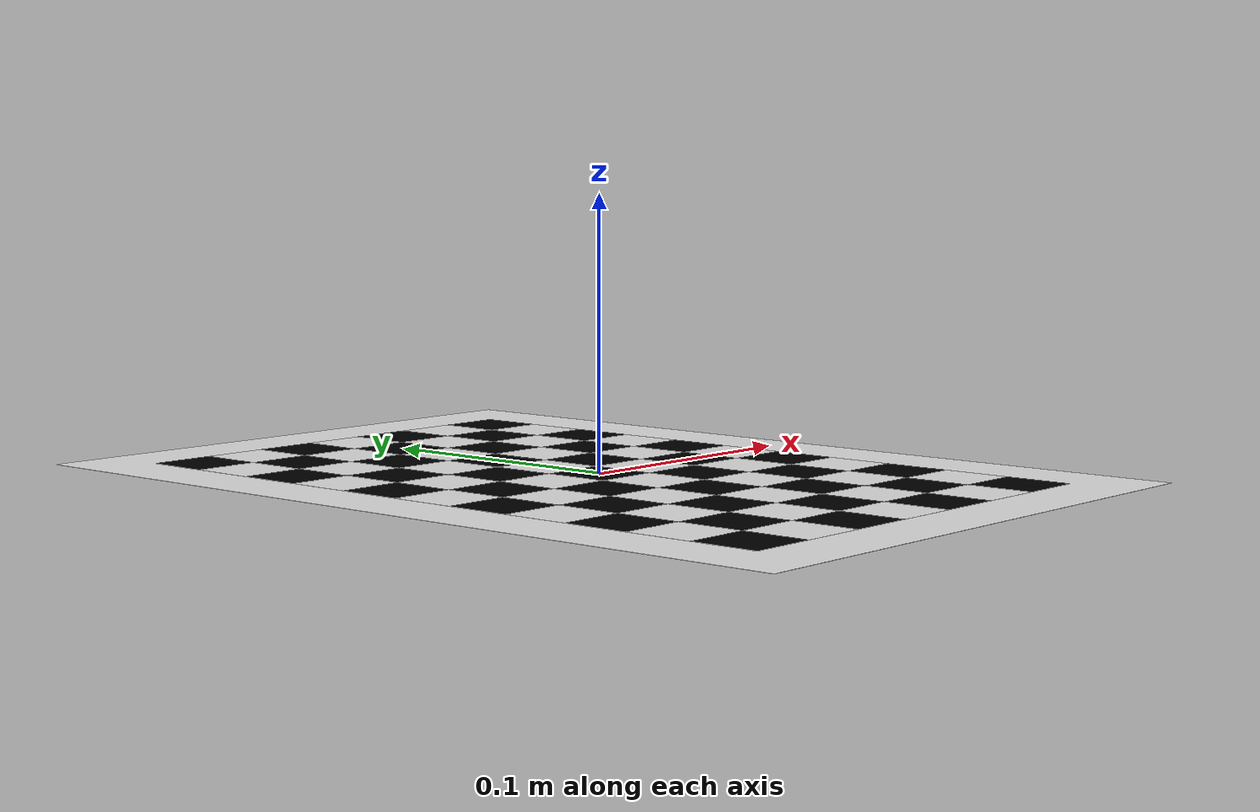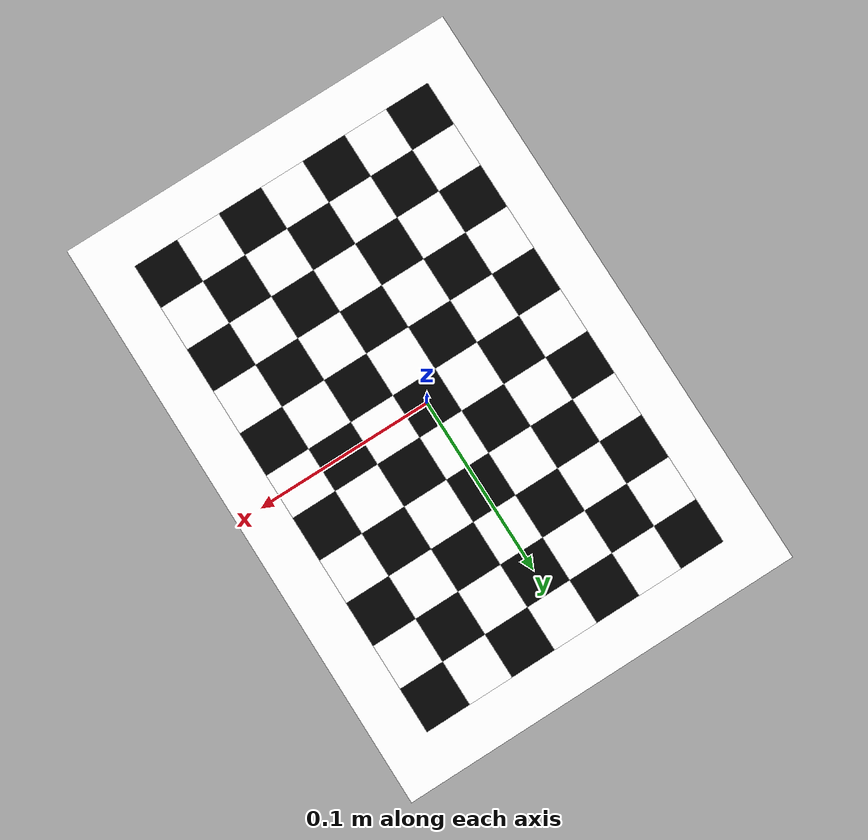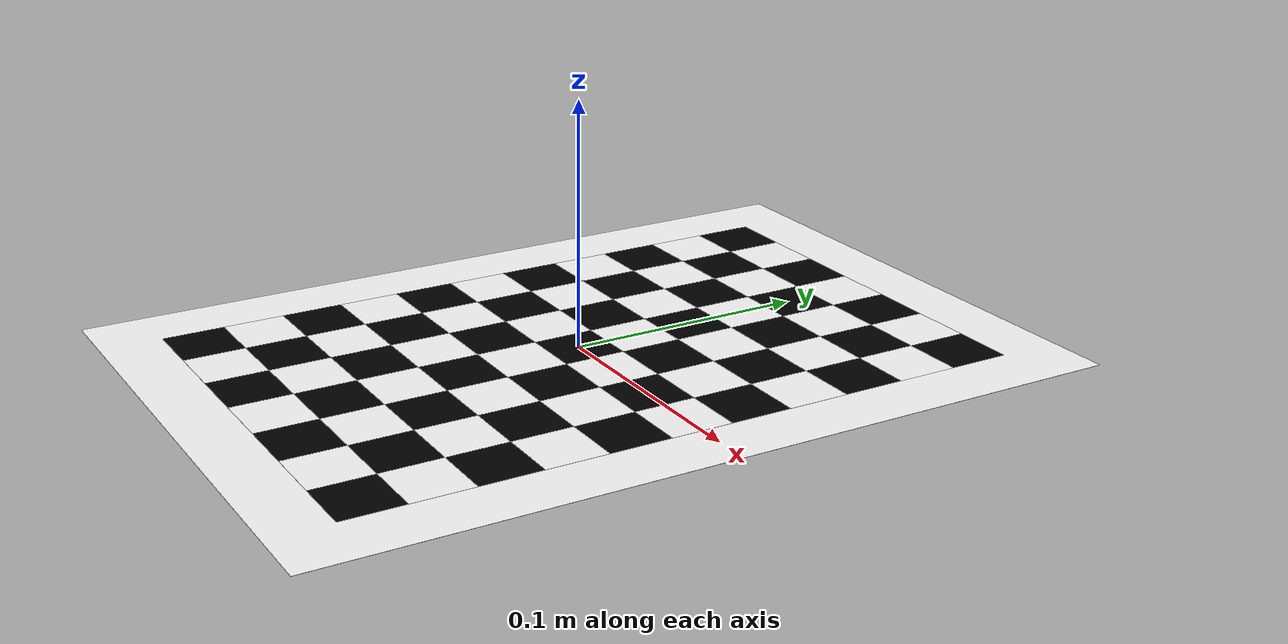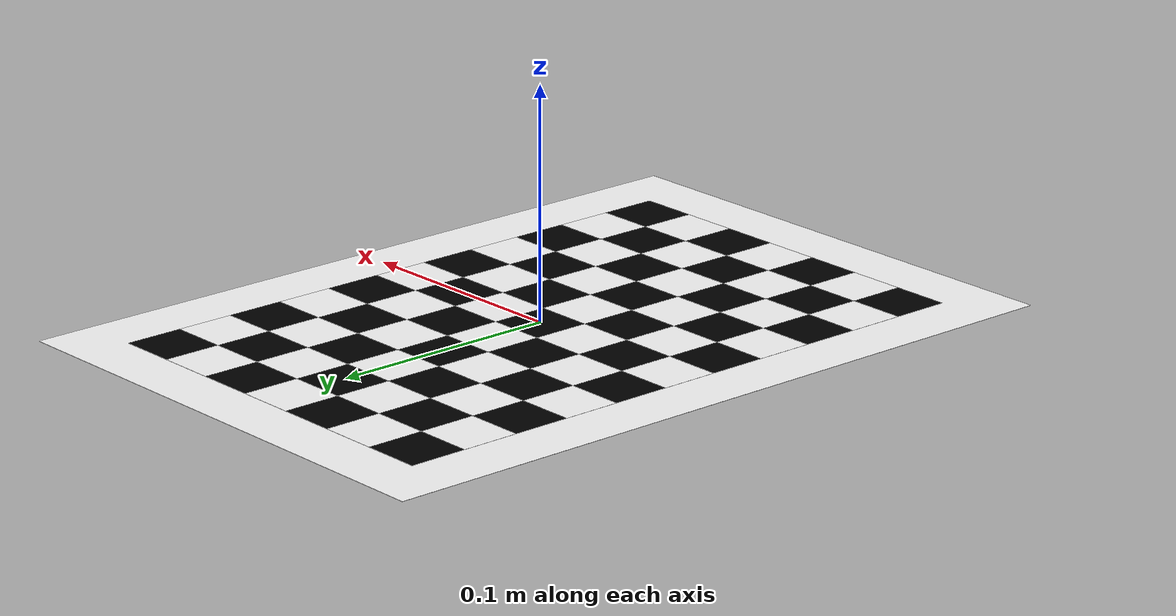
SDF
<?xml version="1.0"?>
<sdf version="1.4">
  <model name="checkerboard_7_11_0_0254">
  <static>true</static>
  <link name="checkerboard_7_11_0_0254_body">
      <visual name="checker_0_0">
        <pose>-0.0762 -0.127 0 0 0 0</pose>
        <geometry>
          <box>
            <size>0.0254 0.0254 0.0002</size>
          </box>
        </geometry>
        <material>
          <ambient>0 0 0 1</ambient>
          <diffuse>0 0 0 1</diffuse>
          <specular>0 0 0 1</specular>
          <emissive>0 0 0 1</emissive>
        </material>
      </visual>
      <visual name="checker_0_1">
        <pose>-0.0762 -0.1016 0 0 0 0</pose>
        <geometry>
          <box>
            <size>0.0254 0.0254 0.0002</size>
          </box>
        </geometry>
        <material>
          <ambient>1 1 1 1</ambient>
          <diffuse>1 1 1 1</diffuse>
          <specular>1 1 1 1</specular>
          <emissive>1 1 1 1</emissive>
        </material>
      </visual>
      <visual name="checker_0_2">
        <pose>-0.0762 -0.0762 0 0 0 0</pose>
        <geometry>
          <box>
            <size>0.0254 0.0254 0.0002</size>
          </box>
        </geometry>
        <material>
          <ambient>0 0 0 1</ambient>
          <diffuse>0 0 0 1</diffuse>
          <specular>0 0 0 1</specular>
          <emissive>0 0 0 1</emissive>
        </material>
      </visual>
      <visual name="checker_0_3">
        <pose>-0.0762 -0.0508 0 0 0 0</pose>
        <geometry>
          <box>
            <size>0.0254 0.0254 0.0002</size>
          </box>
        </geometry>
        <material>
          <ambient>1 1 1 1</ambient>
          <diffuse>1 1 1 1</diffuse>
          <specular>1 1 1 1</specular>
          <emissive>1 1 1 1</emissive>
        </material>
      </visual>
      <visual name="checker_0_4">
        <pose>-0.0762 -0.0254 0 0 0 0</pose>
        <geometry>
          <box>
            <size>0.0254 0.0254 0.0002</size>
          </box>
        </geometry>
        <material>
          <ambient>0 0 0 1</ambient>
          <diffuse>0 0 0 1</diffuse>
          <specular>0 0 0 1</specular>
          <emissive>0 0 0 1</emissive>
        </material>
      </visual>
      <visual name="checker_0_5">
        <pose>-0.0762 0.0 0 0 0 0</pose>
        <geometry>
          <box>
            <size>0.0254 0.0254 0.0002</size>
          </box>
        </geometry>
        <material>
          <ambient>1 1 1 1</ambient>
          <diffuse>1 1 1 1</diffuse>
          <specular>1 1 1 1</specular>
          <emissive>1 1 1 1</emissive>
        </material>
      </visual>
      <visual name="checker_0_6">
        <pose>-0.0762 0.0254 0 0 0 0</pose>
        <geometry>
          <box>
            <size>0.0254 0.0254 0.0002</size>
          </box>
        </geometry>
        <material>
          <ambient>0 0 0 1</ambient>
          <diffuse>0 0 0 1</diffuse>
          <specular>0 0 0 1</specular>
          <emissive>0 0 0 1</emissive>
        </material>
      </visual>
      <visual name="checker_0_7">
        <pose>-0.0762 0.0508 0 0 0 0</pose>
        <geometry>
          <box>
            <size>0.0254 0.0254 0.0002</size>
          </box>
        </geometry>
        <material>
          <ambient>1 1 1 1</ambient>
          <diffuse>1 1 1 1</diffuse>
          <specular>1 1 1 1</specular>
          <emissive>1 1 1 1</emissive>
        </material>
      </visual>
      <visual name="checker_0_8">
        <pose>-0.0762 0.0762 0 0 0 0</pose>
        <geometry>
          <box>
            <size>0.0254 0.0254 0.0002</size>
          </box>
        </geometry>
        <material>
          <ambient>0 0 0 1</ambient>
          <diffuse>0 0 0 1</diffuse>
          <specular>0 0 0 1</specular>
          <emissive>0 0 0 1</emissive>
        </material>
      </visual>
      <visual name="checker_0_9">
        <pose>-0.0762 0.1016 0 0 0 0</pose>
        <geometry>
          <box>
            <size>0.0254 0.0254 0.0002</size>
          </box>
        </geometry>
        <material>
          <ambient>1 1 1 1</ambient>
          <diffuse>1 1 1 1</diffuse>
          <specular>1 1 1 1</specular>
          <emissive>1 1 1 1</emissive>
        </material>
      </visual>
      <visual name="checker_0_10">
        <pose>-0.0762 0.127 0 0 0 0</pose>
        <geometry>
          <box>
            <size>0.0254 0.0254 0.0002</size>
          </box>
        </geometry>
        <material>
          <ambient>0 0 0 1</ambient>
          <diffuse>0 0 0 1</diffuse>
          <specular>0 0 0 1</specular>
          <emissive>0 0 0 1</emissive>
        </material>
      </visual>
      <visual name="checker_1_0">
        <pose>-0.0508 -0.127 0 0 0 0</pose>
        <geometry>
          <box>
            <size>0.0254 0.0254 0.0002</size>
          </box>
        </geometry>
        <material>
          <ambient>1 1 1 1</ambient>
          <diffuse>1 1 1 1</diffuse>
          <specular>1 1 1 1</specular>
          <emissive>1 1 1 1</emissive>
        </material>
      </visual>
      <visual name="checker_1_1">
        <pose>-0.0508 -0.1016 0 0 0 0</pose>
        <geometry>
          <box>
            <size>0.0254 0.0254 0.0002</size>
          </box>
        </geometry>
        <material>
          <ambient>0 0 0 1</ambient>
          <diffuse>0 0 0 1</diffuse>
          <specular>0 0 0 1</specular>
          <emissive>0 0 0 1</emissive>
        </material>
      </visual>
      <visual name="checker_1_2">
        <pose>-0.0508 -0.0762 0 0 0 0</pose>
        <geometry>
          <box>
            <size>0.0254 0.0254 0.0002</size>
          </box>
        </geometry>
        <material>
          <ambient>1 1 1 1</ambient>
          <diffuse>1 1 1 1</diffuse>
          <specular>1 1 1 1</specular>
          <emissive>1 1 1 1</emissive>
        </material>
      </visual>
      <visual name="checker_1_3">
        <pose>-0.0508 -0.0508 0 0 0 0</pose>
        <geometry>
          <box>
            <size>0.0254 0.0254 0.0002</size>
          </box>
        </geometry>
        <material>
          <ambient>0 0 0 1</ambient>
          <diffuse>0 0 0 1</diffuse>
          <specular>0 0 0 1</specular>
          <emissive>0 0 0 1</emissive>
        </material>
      </visual>
      <visual name="checker_1_4">
        <pose>-0.0508 -0.0254 0 0 0 0</pose>
        <geometry>
          <box>
            <size>0.0254 0.0254 0.0002</size>
          </box>
        </geometry>
        <material>
          <ambient>1 1 1 1</ambient>
          <diffuse>1 1 1 1</diffuse>
          <specular>1 1 1 1</specular>
          <emissive>1 1 1 1</emissive>
        </material>
      </visual>
      <visual name="checker_1_5">
        <pose>-0.0508 0.0 0 0 0 0</pose>
        <geometry>
          <box>
            <size>0.0254 0.0254 0.0002</size>
          </box>
        </geometry>
        <material>
          <ambient>0 0 0 1</ambient>
          <diffuse>0 0 0 1</diffuse>
          <specular>0 0 0 1</specular>
          <emissive>0 0 0 1</emissive>
        </material>
      </visual>
      <visual name="checker_1_6">
        <pose>-0.0508 0.0254 0 0 0 0</pose>
        <geometry>
          <box>
            <size>0.0254 0.0254 0.0002</size>
          </box>
        </geometry>
        <material>
          <ambient>1 1 1 1</ambient>
          <diffuse>1 1 1 1</diffuse>
          <specular>1 1 1 1</specular>
          <emissive>1 1 1 1</emissive>
        </material>
      </visual>
      <visual name="checker_1_7">
        <pose>-0.0508 0.0508 0 0 0 0</pose>
        <geometry>
          <box>
            <size>0.0254 0.0254 0.0002</size>
          </box>
        </geometry>
        <material>
          <ambient>0 0 0 1</ambient>
          <diffuse>0 0 0 1</diffuse>
          <specular>0 0 0 1</specular>
          <emissive>0 0 0 1</emissive>
        </material>
      </visual>
      <visual name="checker_1_8">
        <pose>-0.0508 0.0762 0 0 0 0</pose>
        <geometry>
          <box>
            <size>0.0254 0.0254 0.0002</size>
          </box>
        </geometry>
        <material>
          <ambient>1 1 1 1</ambient>
          <diffuse>1 1 1 1</diffuse>
          <specular>1 1 1 1</specular>
          <emissive>1 1 1 1</emissive>
        </material>
      </visual>
      <visual name="checker_1_9">
        <pose>-0.0508 0.1016 0 0 0 0</pose>
        <geometry>
          <box>
            <size>0.0254 0.0254 0.0002</size>
          </box>
        </geometry>
        <material>
          <ambient>0 0 0 1</ambient>
          <diffuse>0 0 0 1</diffuse>
          <specular>0 0 0 1</specular>
          <emissive>0 0 0 1</emissive>
        </material>
      </visual>
      <visual name="checker_1_10">
        <pose>-0.0508 0.127 0 0 0 0</pose>
        <geometry>
          <box>
            <size>0.0254 0.0254 0.0002</size>
          </box>
        </geometry>
        <material>
          <ambient>1 1 1 1</ambient>
          <diffuse>1 1 1 1</diffuse>
          <specular>1 1 1 1</specular>
          <emissive>1 1 1 1</emissive>
        </material>
      </visual>
      <visual name="checker_2_0">
        <pose>-0.0254 -0.127 0 0 0 0</pose>
        <geometry>
          <box>
            <size>0.0254 0.0254 0.0002</size>
          </box>
        </geometry>
        <material>
          <ambient>0 0 0 1</ambient>
          <diffuse>0 0 0 1</diffuse>
          <specular>0 0 0 1</specular>
          <emissive>0 0 0 1</emissive>
        </material>
      </visual>
      <visual name="checker_2_1">
        <pose>-0.0254 -0.1016 0 0 0 0</pose>
        <geometry>
          <box>
            <size>0.0254 0.0254 0.0002</size>
          </box>
        </geometry>
        <material>
          <ambient>1 1 1 1</ambient>
          <diffuse>1 1 1 1</diffuse>
          <specular>1 1 1 1</specular>
          <emissive>1 1 1 1</emissive>
        </material>
      </visual>
      <visual name="checker_2_2">
        <pose>-0.0254 -0.0762 0 0 0 0</pose>
        <geometry>
          <box>
            <size>0.0254 0.0254 0.0002</size>
          </box>
        </geometry>
        <material>
          <ambient>0 0 0 1</ambient>
          <diffuse>0 0 0 1</diffuse>
          <specular>0 0 0 1</specular>
          <emissive>0 0 0 1</emissive>
        </material>
      </visual>
      <visual name="checker_2_3">
        <pose>-0.0254 -0.0508 0 0 0 0</pose>
        <geometry>
          <box>
            <size>0.0254 0.0254 0.0002</size>
          </box>
        </geometry>
        <material>
          <ambient>1 1 1 1</ambient>
          <diffuse>1 1 1 1</diffuse>
          <specular>1 1 1 1</specular>
          <emissive>1 1 1 1</emissive>
        </material>
      </visual>
      <visual name="checker_2_4">
        <pose>-0.0254 -0.0254 0 0 0 0</pose>
        <geometry>
          <box>
            <size>0.0254 0.0254 0.0002</size>
          </box>
        </geometry>
        <material>
          <ambient>0 0 0 1</ambient>
          <diffuse>0 0 0 1</diffuse>
          <specular>0 0 0 1</specular>
          <emissive>0 0 0 1</emissive>
        </material>
      </visual>
      <visual name="checker_2_5">
        <pose>-0.0254 0.0 0 0 0 0</pose>
        <geometry>
          <box>
            <size>0.0254 0.0254 0.0002</size>
          </box>
        </geometry>
        <material>
          <ambient>1 1 1 1</ambient>
          <diffuse>1 1 1 1</diffuse>
          <specular>1 1 1 1</specular>
          <emissive>1 1 1 1</emissive>
        </material>
      </visual>
      <visual name="checker_2_6">
        <pose>-0.0254 0.0254 0 0 0 0</pose>
        <geometry>
          <box>
            <size>0.0254 0.0254 0.0002</size>
          </box>
        </geometry>
        <material>
          <ambient>0 0 0 1</ambient>
          <diffuse>0 0 0 1</diffuse>
          <specular>0 0 0 1</specular>
          <emissive>0 0 0 1</emissive>
        </material>
      </visual>
      <visual name="checker_2_7">
        <pose>-0.0254 0.0508 0 0 0 0</pose>
        <geometry>
          <box>
            <size>0.0254 0.0254 0.0002</size>
          </box>
        </geometry>
        <material>
          <ambient>1 1 1 1</ambient>
          <diffuse>1 1 1 1</diffuse>
          <specular>1 1 1 1</specular>
          <emissive>1 1 1 1</emissive>
        </material>
      </visual>
      <visual name="checker_2_8">
        <pose>-0.0254 0.0762 0 0 0 0</pose>
        <geometry>
          <box>
            <size>0.0254 0.0254 0.0002</size>
          </box>
        </geometry>
        <material>
          <ambient>0 0 0 1</ambient>
          <diffuse>0 0 0 1</diffuse>
          <specular>0 0 0 1</specular>
          <emissive>0 0 0 1</emissive>
        </material>
      </visual>
      <visual name="checker_2_9">
        <pose>-0.0254 0.1016 0 0 0 0</pose>
        <geometry>
          <box>
            <size>0.0254 0.0254 0.0002</size>
          </box>
        </geometry>
        <material>
          <ambient>1 1 1 1</ambient>
          <diffuse>1 1 1 1</diffuse>
          <specular>1 1 1 1</specular>
          <emissive>1 1 1 1</emissive>
        </material>
      </visual>
      <visual name="checker_2_10">
        <pose>-0.0254 0.127 0 0 0 0</pose>
        <geometry>
          <box>
            <size>0.0254 0.0254 0.0002</size>
          </box>
        </geometry>
        <material>
          <ambient>0 0 0 1</ambient>
          <diffuse>0 0 0 1</diffuse>
          <specular>0 0 0 1</specular>
          <emissive>0 0 0 1</emissive>
        </material>
      </visual>
      <visual name="checker_3_0">
        <pose>0.0 -0.127 0 0 0 0</pose>
        <geometry>
          <box>
            <size>0.0254 0.0254 0.0002</size>
          </box>
        </geometry>
        <material>
          <ambient>1 1 1 1</ambient>
          <diffuse>1 1 1 1</diffuse>
          <specular>1 1 1 1</specular>
          <emissive>1 1 1 1</emissive>
        </material>
      </visual>
      <visual name="checker_3_1">
        <pose>0.0 -0.1016 0 0 0 0</pose>
        <geometry>
          <box>
            <size>0.0254 0.0254 0.0002</size>
          </box>
        </geometry>
        <material>
          <ambient>0 0 0 1</ambient>
          <diffuse>0 0 0 1</diffuse>
          <specular>0 0 0 1</specular>
          <emissive>0 0 0 1</emissive>
        </material>
      </visual>
      <visual name="checker_3_2">
        <pose>0.0 -0.0762 0 0 0 0</pose>
        <geometry>
          <box>
            <size>0.0254 0.0254 0.0002</size>
          </box>
        </geometry>
        <material>
          <ambient>1 1 1 1</ambient>
          <diffuse>1 1 1 1</diffuse>
          <specular>1 1 1 1</specular>
          <emissive>1 1 1 1</emissive>
        </material>
      </visual>
      <visual name="checker_3_3">
        <pose>0.0 -0.0508 0 0 0 0</pose>
        <geometry>
          <box>
            <size>0.0254 0.0254 0.0002</size>
          </box>
        </geometry>
        <material>
          <ambient>0 0 0 1</ambient>
          <diffuse>0 0 0 1</diffuse>
          <specular>0 0 0 1</specular>
          <emissive>0 0 0 1</emissive>
        </material>
      </visual>
      <visual name="checker_3_4">
        <pose>0.0 -0.0254 0 0 0 0</pose>
        <geometry>
          <box>
            <size>0.0254 0.0254 0.0002</size>
          </box>
        </geometry>
        <material>
          <ambient>1 1 1 1</ambient>
          <diffuse>1 1 1 1</diffuse>
          <specular>1 1 1 1</specular>
          <emissive>1 1 1 1</emissive>
        </material>
      </visual>
      <visual name="checker_3_5">
        <pose>0.0 0.0 0 0 0 0</pose>
        <geometry>
          <box>
            <size>0.0254 0.0254 0.0002</size>
          </box>
        </geometry>
        <material>
          <ambient>0 0 0 1</ambient>
          <diffuse>0 0 0 1</diffuse>
          <specular>0 0 0 1</specular>
          <emissive>0 0 0 1</emissive>
        </material>
      </visual>
      <visual name="checker_3_6">
        <pose>0.0 0.0254 0 0 0 0</pose>
        <geometry>
          <box>
            <size>0.0254 0.0254 0.0002</size>
          </box>
        </geometry>
        <material>
          <ambient>1 1 1 1</ambient>
          <diffuse>1 1 1 1</diffuse>
          <specular>1 1 1 1</specular>
          <emissive>1 1 1 1</emissive>
        </material>
      </visual>
      <visual name="checker_3_7">
        <pose>0.0 0.0508 0 0 0 0</pose>
        <geometry>
          <box>
            <size>0.0254 0.0254 0.0002</size>
          </box>
        </geometry>
        <material>
          <ambient>0 0 0 1</ambient>
          <diffuse>0 0 0 1</diffuse>
          <specular>0 0 0 1</specular>
          <emissive>0 0 0 1</emissive>
        </material>
      </visual>
      <visual name="checker_3_8">
        <pose>0.0 0.0762 0 0 0 0</pose>
        <geometry>
          <box>
            <size>0.0254 0.0254 0.0002</size>
          </box>
        </geometry>
        <material>
          <ambient>1 1 1 1</ambient>
          <diffuse>1 1 1 1</diffuse>
          <specular>1 1 1 1</specular>
          <emissive>1 1 1 1</emissive>
        </material>
      </visual>
      <visual name="checker_3_9">
        <pose>0.0 0.1016 0 0 0 0</pose>
        <geometry>
          <box>
            <size>0.0254 0.0254 0.0002</size>
          </box>
        </geometry>
        <material>
          <ambient>0 0 0 1</ambient>
          <diffuse>0 0 0 1</diffuse>
          <specular>0 0 0 1</specular>
          <emissive>0 0 0 1</emissive>
        </material>
      </visual>
      <visual name="checker_3_10">
        <pose>0.0 0.127 0 0 0 0</pose>
        <geometry>
          <box>
            <size>0.0254 0.0254 0.0002</size>
          </box>
        </geometry>
        <material>
          <ambient>1 1 1 1</ambient>
          <diffuse>1 1 1 1</diffuse>
          <specular>1 1 1 1</specular>
          <emissive>1 1 1 1</emissive>
        </material>
      </visual>
      <visual name="checker_4_0">
        <pose>0.0254 -0.127 0 0 0 0</pose>
        <geometry>
          <box>
            <size>0.0254 0.0254 0.0002</size>
          </box>
        </geometry>
        <material>
          <ambient>0 0 0 1</ambient>
          <diffuse>0 0 0 1</diffuse>
          <specular>0 0 0 1</specular>
          <emissive>0 0 0 1</emissive>
        </material>
      </visual>
      <visual name="checker_4_1">
        <pose>0.0254 -0.1016 0 0 0 0</pose>
        <geometry>
          <box>
            <size>0.0254 0.0254 0.0002</size>
          </box>
        </geometry>
        <material>
          <ambient>1 1 1 1</ambient>
          <diffuse>1 1 1 1</diffuse>
          <specular>1 1 1 1</specular>
          <emissive>1 1 1 1</emissive>
        </material>
      </visual>
      <visual name="checker_4_2">
        <pose>0.0254 -0.0762 0 0 0 0</pose>
        <geometry>
          <box>
            <size>0.0254 0.0254 0.0002</size>
          </box>
        </geometry>
        <material>
          <ambient>0 0 0 1</ambient>
          <diffuse>0 0 0 1</diffuse>
          <specular>0 0 0 1</specular>
          <emissive>0 0 0 1</emissive>
        </material>
      </visual>
      <visual name="checker_4_3">
        <pose>0.0254 -0.0508 0 0 0 0</pose>
        <geometry>
          <box>
            <size>0.0254 0.0254 0.0002</size>
          </box>
        </geometry>
        <material>
          <ambient>1 1 1 1</ambient>
          <diffuse>1 1 1 1</diffuse>
          <specular>1 1 1 1</specular>
          <emissive>1 1 1 1</emissive>
        </material>
      </visual>
      <visual name="checker_4_4">
        <pose>0.0254 -0.0254 0 0 0 0</pose>
        <geometry>
          <box>
            <size>0.0254 0.0254 0.0002</size>
          </box>
        </geometry>
        <material>
          <ambient>0 0 0 1</ambient>
          <diffuse>0 0 0 1</diffuse>
          <specular>0 0 0 1</specular>
          <emissive>0 0 0 1</emissive>
        </material>
      </visual>
      <visual name="checker_4_5">
        <pose>0.0254 0.0 0 0 0 0</pose>
        <geometry>
          <box>
            <size>0.0254 0.0254 0.0002</size>
          </box>
        </geometry>
        <material>
          <ambient>1 1 1 1</ambient>
          <diffuse>1 1 1 1</diffuse>
          <specular>1 1 1 1</specular>
          <emissive>1 1 1 1</emissive>
        </material>
      </visual>
      <visual name="checker_4_6">
        <pose>0.0254 0.0254 0 0 0 0</pose>
        <geometry>
          <box>
            <size>0.0254 0.0254 0.0002</size>
          </box>
        </geometry>
        <material>
          <ambient>0 0 0 1</ambient>
          <diffuse>0 0 0 1</diffuse>
          <specular>0 0 0 1</specular>
          <emissive>0 0 0 1</emissive>
        </material>
      </visual>
      <visual name="checker_4_7">
        <pose>0.0254 0.0508 0 0 0 0</pose>
        <geometry>
          <box>
            <size>0.0254 0.0254 0.0002</size>
          </box>
        </geometry>
        <material>
          <ambient>1 1 1 1</ambient>
          <diffuse>1 1 1 1</diffuse>
          <specular>1 1 1 1</specular>
          <emissive>1 1 1 1</emissive>
        </material>
      </visual>
      <visual name="checker_4_8">
        <pose>0.0254 0.0762 0 0 0 0</pose>
        <geometry>
          <box>
            <size>0.0254 0.0254 0.0002</size>
          </box>
        </geometry>
        <material>
          <ambient>0 0 0 1</ambient>
          <diffuse>0 0 0 1</diffuse>
          <specular>0 0 0 1</specular>
          <emissive>0 0 0 1</emissive>
        </material>
      </visual>
      <visual name="checker_4_9">
        <pose>0.0254 0.1016 0 0 0 0</pose>
        <geometry>
          <box>
            <size>0.0254 0.0254 0.0002</size>
          </box>
        </geometry>
        <material>
          <ambient>1 1 1 1</ambient>
          <diffuse>1 1 1 1</diffuse>
          <specular>1 1 1 1</specular>
          <emissive>1 1 1 1</emissive>
        </material>
      </visual>
      <visual name="checker_4_10">
        <pose>0.0254 0.127 0 0 0 0</pose>
        <geometry>
          <box>
            <size>0.0254 0.0254 0.0002</size>
          </box>
        </geometry>
        <material>
          <ambient>0 0 0 1</ambient>
          <diffuse>0 0 0 1</diffuse>
          <specular>0 0 0 1</specular>
          <emissive>0 0 0 1</emissive>
        </material>
      </visual>
      <visual name="checker_5_0">
        <pose>0.0508 -0.127 0 0 0 0</pose>
        <geometry>
          <box>
            <size>0.0254 0.0254 0.0002</size>
          </box>
        </geometry>
        <material>
          <ambient>1 1 1 1</ambient>
          <diffuse>1 1 1 1</diffuse>
          <specular>1 1 1 1</specular>
          <emissive>1 1 1 1</emissive>
        </material>
      </visual>
      <visual name="checker_5_1">
        <pose>0.0508 -0.1016 0 0 0 0</pose>
        <geometry>
          <box>
            <size>0.0254 0.0254 0.0002</size>
          </box>
        </geometry>
        <material>
          <ambient>0 0 0 1</ambient>
          <diffuse>0 0 0 1</diffuse>
          <specular>0 0 0 1</specular>
          <emissive>0 0 0 1</emissive>
        </material>
      </visual>
      <visual name="checker_5_2">
        <pose>0.0508 -0.0762 0 0 0 0</pose>
        <geometry>
          <box>
            <size>0.0254 0.0254 0.0002</size>
          </box>
        </geometry>
        <material>
          <ambient>1 1 1 1</ambient>
          <diffuse>1 1 1 1</diffuse>
          <specular>1 1 1 1</specular>
          <emissive>1 1 1 1</emissive>
        </material>
      </visual>
      <visual name="checker_5_3">
        <pose>0.0508 -0.0508 0 0 0 0</pose>
        <geometry>
          <box>
            <size>0.0254 0.0254 0.0002</size>
          </box>
        </geometry>
        <material>
          <ambient>0 0 0 1</ambient>
          <diffuse>0 0 0 1</diffuse>
          <specular>0 0 0 1</specular>
          <emissive>0 0 0 1</emissive>
        </material>
      </visual>
      <visual name="checker_5_4">
        <pose>0.0508 -0.0254 0 0 0 0</pose>
        <geometry>
          <box>
            <size>0.0254 0.0254 0.0002</size>
          </box>
        </geometry>
        <material>
          <ambient>1 1 1 1</ambient>
          <diffuse>1 1 1 1</diffuse>
          <specular>1 1 1 1</specular>
          <emissive>1 1 1 1</emissive>
        </material>
      </visual>
      <visual name="checker_5_5">
        <pose>0.0508 0.0 0 0 0 0</pose>
        <geometry>
          <box>
            <size>0.0254 0.0254 0.0002</size>
          </box>
        </geometry>
        <material>
          <ambient>0 0 0 1</ambient>
          <diffuse>0 0 0 1</diffuse>
          <specular>0 0 0 1</specular>
          <emissive>0 0 0 1</emissive>
        </material>
      </visual>
      <visual name="checker_5_6">
        <pose>0.0508 0.0254 0 0 0 0</pose>
        <geometry>
          <box>
            <size>0.0254 0.0254 0.0002</size>
          </box>
        </geometry>
        <material>
          <ambient>1 1 1 1</ambient>
          <diffuse>1 1 1 1</diffuse>
          <specular>1 1 1 1</specular>
          <emissive>1 1 1 1</emissive>
        </material>
      </visual>
      <visual name="checker_5_7">
        <pose>0.0508 0.0508 0 0 0 0</pose>
        <geometry>
          <box>
            <size>0.0254 0.0254 0.0002</size>
          </box>
        </geometry>
        <material>
          <ambient>0 0 0 1</ambient>
          <diffuse>0 0 0 1</diffuse>
          <specular>0 0 0 1</specular>
          <emissive>0 0 0 1</emissive>
        </material>
      </visual>
      <visual name="checker_5_8">
        <pose>0.0508 0.0762 0 0 0 0</pose>
        <geometry>
          <box>
            <size>0.0254 0.0254 0.0002</size>
          </box>
        </geometry>
        <material>
          <ambient>1 1 1 1</ambient>
          <diffuse>1 1 1 1</diffuse>
          <specular>1 1 1 1</specular>
          <emissive>1 1 1 1</emissive>
        </material>
      </visual>
      <visual name="checker_5_9">
        <pose>0.0508 0.1016 0 0 0 0</pose>
        <geometry>
          <box>
            <size>0.0254 0.0254 0.0002</size>
          </box>
        </geometry>
        <material>
          <ambient>0 0 0 1</ambient>
          <diffuse>0 0 0 1</diffuse>
          <specular>0 0 0 1</specular>
          <emissive>0 0 0 1</emissive>
        </material>
      </visual>
      <visual name="checker_5_10">
        <pose>0.0508 0.127 0 0 0 0</pose>
        <geometry>
          <box>
            <size>0.0254 0.0254 0.0002</size>
          </box>
        </geometry>
        <material>
          <ambient>1 1 1 1</ambient>
          <diffuse>1 1 1 1</diffuse>
          <specular>1 1 1 1</specular>
          <emissive>1 1 1 1</emissive>
        </material>
      </visual>
      <visual name="checker_6_0">
        <pose>0.0762 -0.127 0 0 0 0</pose>
        <geometry>
          <box>
            <size>0.0254 0.0254 0.0002</size>
          </box>
        </geometry>
        <material>
          <ambient>0 0 0 1</ambient>
          <diffuse>0 0 0 1</diffuse>
          <specular>0 0 0 1</specular>
          <emissive>0 0 0 1</emissive>
        </material>
      </visual>
      <visual name="checker_6_1">
        <pose>0.0762 -0.1016 0 0 0 0</pose>
        <geometry>
          <box>
            <size>0.0254 0.0254 0.0002</size>
          </box>
        </geometry>
        <material>
          <ambient>1 1 1 1</ambient>
          <diffuse>1 1 1 1</diffuse>
          <specular>1 1 1 1</specular>
          <emissive>1 1 1 1</emissive>
        </material>
      </visual>
      <visual name="checker_6_2">
        <pose>0.0762 -0.0762 0 0 0 0</pose>
        <geometry>
          <box>
            <size>0.0254 0.0254 0.0002</size>
          </box>
        </geometry>
        <material>
          <ambient>0 0 0 1</ambient>
          <diffuse>0 0 0 1</diffuse>
          <specular>0 0 0 1</specular>
          <emissive>0 0 0 1</emissive>
        </material>
      </visual>
      <visual name="checker_6_3">
        <pose>0.0762 -0.0508 0 0 0 0</pose>
        <geometry>
          <box>
            <size>0.0254 0.0254 0.0002</size>
          </box>
        </geometry>
        <material>
          <ambient>1 1 1 1</ambient>
          <diffuse>1 1 1 1</diffuse>
          <specular>1 1 1 1</specular>
          <emissive>1 1 1 1</emissive>
        </material>
      </visual>
      <visual name="checker_6_4">
        <pose>0.0762 -0.0254 0 0 0 0</pose>
        <geometry>
          <box>
            <size>0.0254 0.0254 0.0002</size>
          </box>
        </geometry>
        <material>
          <ambient>0 0 0 1</ambient>
          <diffuse>0 0 0 1</diffuse>
          <specular>0 0 0 1</specular>
          <emissive>0 0 0 1</emissive>
        </material>
      </visual>
      <visual name="checker_6_5">
        <pose>0.0762 0.0 0 0 0 0</pose>
        <geometry>
          <box>
            <size>0.0254 0.0254 0.0002</size>
          </box>
        </geometry>
        <material>
          <ambient>1 1 1 1</ambient>
          <diffuse>1 1 1 1</diffuse>
          <specular>1 1 1 1</specular>
          <emissive>1 1 1 1</emissive>
        </material>
      </visual>
      <visual name="checker_6_6">
        <pose>0.0762 0.0254 0 0 0 0</pose>
        <geometry>
          <box>
            <size>0.0254 0.0254 0.0002</size>
          </box>
        </geometry>
        <material>
          <ambient>0 0 0 1</ambient>
          <diffuse>0 0 0 1</diffuse>
          <specular>0 0 0 1</specular>
          <emissive>0 0 0 1</emissive>
        </material>
      </visual>
      <visual name="checker_6_7">
        <pose>0.0762 0.0508 0 0 0 0</pose>
        <geometry>
          <box>
            <size>0.0254 0.0254 0.0002</size>
          </box>
        </geometry>
        <material>
          <ambient>1 1 1 1</ambient>
          <diffuse>1 1 1 1</diffuse>
          <specular>1 1 1 1</specular>
          <emissive>1 1 1 1</emissive>
        </material>
      </visual>
      <visual name="checker_6_8">
        <pose>0.0762 0.0762 0 0 0 0</pose>
        <geometry>
          <box>
            <size>0.0254 0.0254 0.0002</size>
          </box>
        </geometry>
        <material>
          <ambient>0 0 0 1</ambient>
          <diffuse>0 0 0 1</diffuse>
          <specular>0 0 0 1</specular>
          <emissive>0 0 0 1</emissive>
        </material>
      </visual>
      <visual name="checker_6_9">
        <pose>0.0762 0.1016 0 0 0 0</pose>
        <geometry>
          <box>
            <size>0.0254 0.0254 0.0002</size>
          </box>
        </geometry>
        <material>
          <ambient>1 1 1 1</ambient>
          <diffuse>1 1 1 1</diffuse>
          <specular>1 1 1 1</specular>
          <emissive>1 1 1 1</emissive>
        </material>
      </visual>
      <visual name="checker_6_10">
        <pose>0.0762 0.127 0 0 0 0</pose>
        <geometry>
          <box>
            <size>0.0254 0.0254 0.0002</size>
          </box>
        </geometry>
        <material>
          <ambient>0 0 0 1</ambient>
          <diffuse>0 0 0 1</diffuse>
          <specular>0 0 0 1</specular>
          <emissive>0 0 0 1</emissive>
        </material>
      </visual>
      <visual name="checker_backdrop">
        <pose>0 0 0 0 0 0</pose>
        <geometry>
          <box>
            <size>0.2286 0.3302 0.0001</size>
          </box>
        </geometry>
        <material>
          <ambient>1 1 1 1</ambient>
          <diffuse>1 1 1 1</diffuse>
          <specular>1 1 1 1</specular>
          <emissive>1 1 1 1</emissive>
        </material>
      </visual>
    </link>
  </model>
</sdf>
